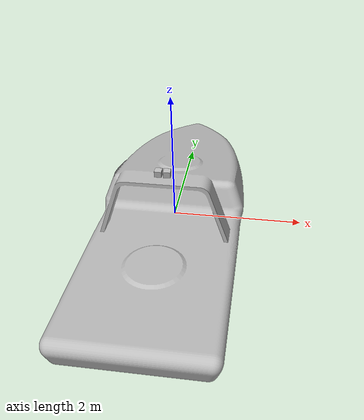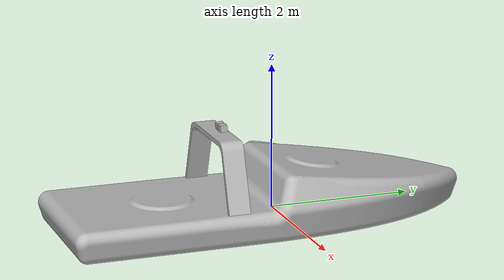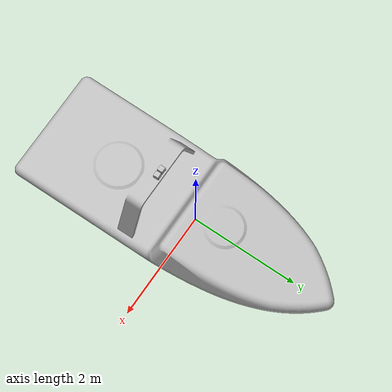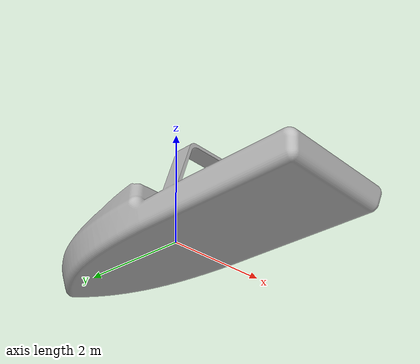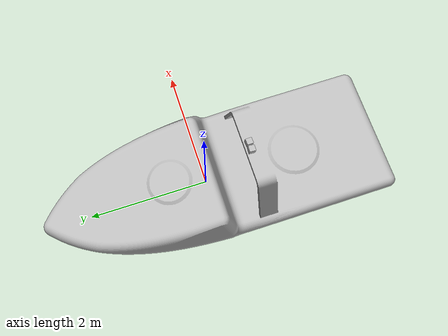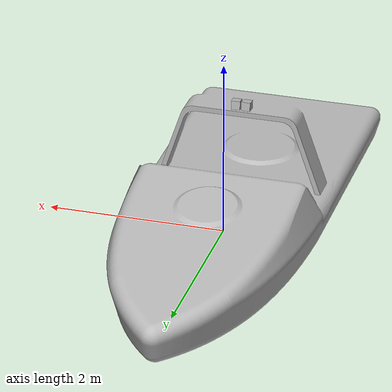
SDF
<?xml version="1.0" ?>
<sdf version="1.5">
  <model name="monodrone">
    <pose>0 0 0.1 0 0 0</pose>
    <link name="link">
 	<inertial>
	    <pose>0 0 0.1 0 0 0</pose>
	     <mass>1.0</mass>
	      <inertia>
	       <ixx>0.0735</ixx>
	       <ixy>0</ixy>
	       <ixz>0</ixz>
	       <iyy>0.092</iyy>
	       <iyz>0</iyz>
	       <izz>-0.042</izz>
	      </inertia>
	   </inertial>
      <collision name="monodrone_collision">
	<surface>
	 <contact>
		 <ode>
		 <max_vel>100.0</max_vel>
		 <min_depth>0.001</min_depth>
		 </ode>
	 </contact>
	 <friction>
		 <ode>
		 <mu>100000.0</mu>
		 <mu2>100000.0</mu2>
		 </ode>
	 </friction>
	</surface>

        <geometry>
          <mesh>
	     <uri>model://mono_drone/meshes/monodrone.stl</uri>
	     <scale> 3 3 3</scale>
          </mesh>
        </geometry>
      </collision>

      <visual name="monodrone_visual">
        <cast_shadows>false</cast_shadows>
        <pose>0 0 0.1 0 0 0</pose>
        <geometry>
          <mesh>
	     <uri>model://mono_drone/meshes/monodrone.dae</uri>
	      <scale> 3 3 3</scale>
          </mesh>
        </geometry>
      </visual>
    </link>

	<link name='monodrone/camera1_link'>
	   <pose>0.06 -0.72 1.1 0 -0.1 1.620796325</pose>
	   <inertial>
	     <pose>0 0 0 0 0 0</pose>
	     <mass>0.001</mass>
	      <inertia>
	       <ixx>0.00001</ixx>
	       <ixy>0</ixy>
	       <ixz>0</ixz>
	       <iyy>0.00002</iyy>
	       <iyz>0</iyz>
	       <izz>0.00002</izz>
	      </inertia>
	   </inertial>
	   <collision name='camera1_link_collision'>
	     <geometry>
	      <box>
	       <size>0.10 0.10 0.1</size>
	      </box>
	     </geometry>
             <!--material name="red"/-->
	   </collision>
	   <visual name='camera1_link_visual'>
	    <geometry>
	     <box>
	      <size>0.1 0.1 0.1</size>
	     </box>
	    </geometry>
	    <!--material name="red"/-->
	   </visual>

	   <sensor type="camera" name="camera1">
	    <update_rate>30.0</update_rate>
	    <camera name='head'>
	     <horizontal_fov>1.8675</horizontal_fov>
	      <image>
	       <width>1280</width>
	       <height>720</height>
	       <format>R8G8B8</format>
	      </image>
	      <clip>
	       <near>0.02</near>
	       <far>100</far>
	      </clip>
	    </camera>
	    <plugin name='camera1_controller' filename='libgazebo_ros_camera.so'>
	     <robotNamespace>/</robotNamespace>
	     <alwaysOn>true</alwaysOn>
	     <updateRate>0.0</updateRate>
	     <cameraName>monodrone/right</cameraName>
	     <imageTopicName>image_raw</imageTopicName>
	     <cameraInfoTopicName>camera_info</cameraInfoTopicName>
	     <frameName>camera</frameName>
	     <hackBaseline>0.07</hackBaseline>
	     <distortionK1>0.0</distortionK1>
	     <distortionK2>0.0</distortionK2>
	     <distortionK3>0.0</distortionK3>
	     <distortionT1>0.0</distortionT1>
	     <distortionT2>0.0</distortionT2>
	    </plugin>
	   </sensor>
	 </link>

	 <joint name='monodrone/camera1_joint' type='fixed'>
	  <child>monodrone/camera1_link</child>
	  <parent>link</parent>
	 </joint>

	<link name='monodrone/camera2_link'>
	   <pose>-0.06 -0.72 1.1 0 -0.1 1.520796325</pose>
	   <inertial>
	     <pose>0 0 0 0 0 0</pose>
	     <mass>0.001</mass>
	      <inertia>
	       <ixx>0.00001</ixx>
	       <ixy>0</ixy>
	       <ixz>0</ixz>
	       <iyy>0.00002</iyy>
	       <iyz>0</iyz>
	       <izz>0.00002</izz>
	      </inertia>
	   </inertial>
	   <collision name='camera2_link_collision'>
	     <geometry>
	      <box>
	       <size>0.1 0.1 0.1</size>
	      </box>
	     </geometry>
             <material name="red"/>
	   </collision>
	   <visual name='camera2_link_visual'>
	    <geometry>
	     <box>
	      <size>0.1 0.1 0.1</size>
	     </box>
	    </geometry>
	    <material name="red"/>
	   </visual>

	   <sensor type="camera" name="camera2">
	    <update_rate>30.0</update_rate>
	    <camera name='head'>
	     <horizontal_fov>1.8675</horizontal_fov>
	      <image>
	       <width>1280</width>
	       <height>720</height>
	       <format>R8G8B8</format>
	      </image>
	      <clip>
	       <near>0.02</near>
	       <far>100</far>
	      </clip>
	    </camera>
	    <plugin name='camera2_controller' filename='libgazebo_ros_camera.so'>
	     <robotNamespace>/</robotNamespace>
	     <alwaysOn>true</alwaysOn>
	     <updateRate>0.0</updateRate>
	     <cameraName>monodrone/left</cameraName>
	     <imageTopicName>image_raw</imageTopicName>
	     <cameraInfoTopicName>camera_info</cameraInfoTopicName>
	     <frameName>camera</frameName>
	     <hackBaseline>0.07</hackBaseline>
	     <distortionK1>0.0</distortionK1>
	     <distortionK2>0.0</distortionK2>
	     <distortionK3>0.0</distortionK3>
	     <distortionT1>0.0</distortionT1>
	     <distortionT2>0.0</distortionT2>
	    </plugin>
	   </sensor>
	 </link>

	 <joint name='monodrone/camera2_joint' type='fixed'>
	  <child>monodrone/camera2_link</child>
	  <parent>link</parent>
	 </joint>
  </model>
</sdf>
